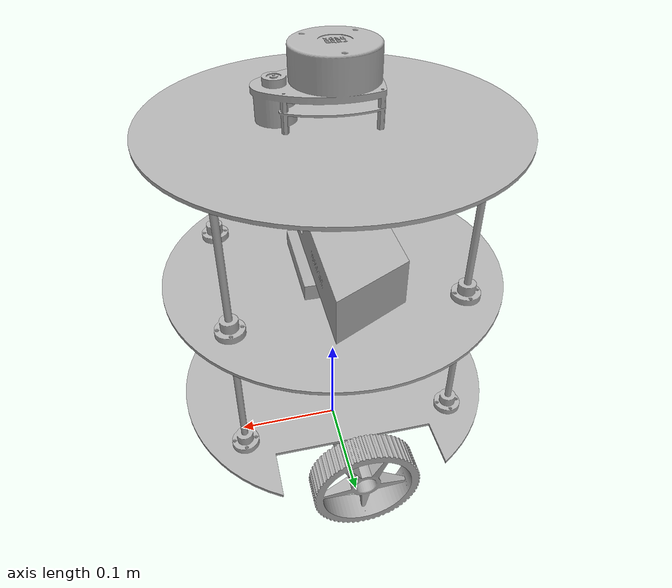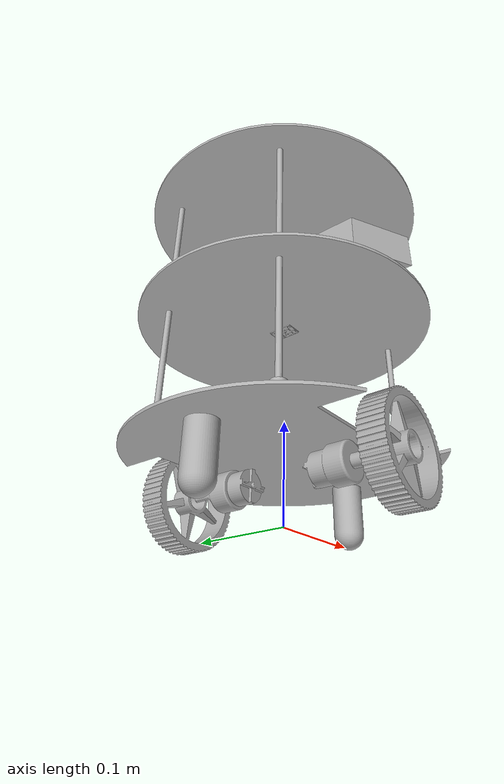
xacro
<?xml version="1.0" ?>
<robot name="greybot" xmlns:xacro="http://www.ros.org/wiki/xacro">

<xacro:include filename="$(find greybot_description)/urdf/materials.xacro" />
<xacro:include filename="$(find greybot_description)/urdf/greybot.trans" />
<xacro:include filename="$(find greybot_description)/urdf/greybot.gazebo" />
<link name="base_link">
  <inertial>
    <origin rpy="0 0 0" xyz="-2.7177496842797606e-17 -2.6467805879211377e-36 0.064"/>
    <mass value="1.3135009177288446"/>
    <inertia ixx="0.004258" ixy="0.0" ixz="-0.0" iyy="0.009288" iyz="0.0" izz="0.013544"/>
  </inertial>
  <visual>
    <origin rpy="0 0 0" xyz="0 0 0"/>
    <geometry>
      <mesh filename="package://greybot_description/meshes/base_link.stl" scale="0.001 0.001 0.001"/>
    </geometry>
    <material name="silver"/>
  </visual>
  <collision>
    <origin rpy="0 0 0" xyz="0 0 0"/>
    <geometry>
      <mesh filename="package://greybot_description/meshes/base_link.stl" scale="0.001 0.001 0.001"/>
    </geometry>
  </collision>
</link>

<link name="coupling_b1_1">
  <inertial>
    <origin rpy="0 0 0" xyz="0.1 -0.07000000000004185 0.07094199242025702"/>
    <mass value="0.011060936379359195"/>
    <inertia ixx="1e-06" ixy="0.0" ixz="0.0" iyy="1e-06" iyz="0.0" izz="1e-06"/>
  </inertial>
  <visual>
    <origin rpy="0 0 0" xyz="-0.0 -0.0 0.0"/>
    <geometry>
      <mesh filename="package://greybot_description/meshes/coupling_b1_1.stl" scale="0.001 0.001 0.001"/>
    </geometry>
    <material name="silver"/>
  </visual>
  <collision>
    <origin rpy="0 0 0" xyz="-0.0 -0.0 0.0"/>
    <geometry>
      <mesh filename="package://greybot_description/meshes/coupling_b1_1.stl" scale="0.001 0.001 0.001"/>
    </geometry>
  </collision>
</link>

<link name="coupling_b2_1">
  <inertial>
    <origin rpy="0 0 0" xyz="0.1 0.06999999999995812 0.07094199242025702"/>
    <mass value="0.011060936379359195"/>
    <inertia ixx="1e-06" ixy="0.0" ixz="0.0" iyy="1e-06" iyz="0.0" izz="1e-06"/>
  </inertial>
  <visual>
    <origin rpy="0 0 0" xyz="-0.0 -0.0 0.0"/>
    <geometry>
      <mesh filename="package://greybot_description/meshes/coupling_b2_1.stl" scale="0.001 0.001 0.001"/>
    </geometry>
    <material name="silver"/>
  </visual>
  <collision>
    <origin rpy="0 0 0" xyz="-0.0 -0.0 0.0"/>
    <geometry>
      <mesh filename="package://greybot_description/meshes/coupling_b2_1.stl" scale="0.001 0.001 0.001"/>
    </geometry>
  </collision>
</link>

<link name="coupling_b3_1">
  <inertial>
    <origin rpy="0 0 0" xyz="-0.10000000000000002 -0.07000000000004182 0.07094199242025703"/>
    <mass value="0.011060936379359195"/>
    <inertia ixx="1e-06" ixy="0.0" ixz="0.0" iyy="1e-06" iyz="0.0" izz="1e-06"/>
  </inertial>
  <visual>
    <origin rpy="0 0 0" xyz="-0.0 -0.0 -0.0"/>
    <geometry>
      <mesh filename="package://greybot_description/meshes/coupling_b3_1.stl" scale="0.001 0.001 0.001"/>
    </geometry>
    <material name="silver"/>
  </visual>
  <collision>
    <origin rpy="0 0 0" xyz="-0.0 -0.0 -0.0"/>
    <geometry>
      <mesh filename="package://greybot_description/meshes/coupling_b3_1.stl" scale="0.001 0.001 0.001"/>
    </geometry>
  </collision>
</link>

<link name="coupling_b4_1">
  <inertial>
    <origin rpy="0 0 0" xyz="-0.10000000000000002 0.06999999999995815 0.07094199242025702"/>
    <mass value="0.011060936379359195"/>
    <inertia ixx="1e-06" ixy="0.0" ixz="0.0" iyy="1e-06" iyz="0.0" izz="1e-06"/>
  </inertial>
  <visual>
    <origin rpy="0 0 0" xyz="-0.0 -0.0 -0.0"/>
    <geometry>
      <mesh filename="package://greybot_description/meshes/coupling_b4_1.stl" scale="0.001 0.001 0.001"/>
    </geometry>
    <material name="silver"/>
  </visual>
  <collision>
    <origin rpy="0 0 0" xyz="-0.0 -0.0 -0.0"/>
    <geometry>
      <mesh filename="package://greybot_description/meshes/coupling_b4_1.stl" scale="0.001 0.001 0.001"/>
    </geometry>
  </collision>
</link>

<link name="standoff_b1_1">
  <inertial>
    <origin rpy="0 0 0" xyz="-9.71445146547012e-17 5.551115123125783e-17 0.11219999999999997"/>
    <mass value="0.02774419012201502"/>
    <inertia ixx="3.6e-05" ixy="0.0" ixz="-0.0" iyy="3.6e-05" iyz="0.0" izz="0.0"/>
  </inertial>
  <visual>
    <origin rpy="0 0 0" xyz="-0.1 0.07 -0.0298"/>
    <geometry>
      <mesh filename="package://greybot_description/meshes/standoff_b1_1.stl" scale="0.001 0.001 0.001"/>
    </geometry>
    <material name="silver"/>
  </visual>
  <collision>
    <origin rpy="0 0 0" xyz="-0.1 0.07 -0.0298"/>
    <geometry>
      <mesh filename="package://greybot_description/meshes/standoff_b1_1.stl" scale="0.001 0.001 0.001"/>
    </geometry>
  </collision>
</link>

<link name="standoff_b2_1">
  <inertial>
    <origin rpy="0 0 0" xyz="-9.71445146547012e-17 -5.551115123125783e-17 0.11219999999999997"/>
    <mass value="0.02774419012201502"/>
    <inertia ixx="3.6e-05" ixy="-0.0" ixz="-0.0" iyy="3.6e-05" iyz="-0.0" izz="0.0"/>
  </inertial>
  <visual>
    <origin rpy="0 0 0" xyz="-0.1 -0.07 -0.0298"/>
    <geometry>
      <mesh filename="package://greybot_description/meshes/standoff_b2_1.stl" scale="0.001 0.001 0.001"/>
    </geometry>
    <material name="silver"/>
  </visual>
  <collision>
    <origin rpy="0 0 0" xyz="-0.1 -0.07 -0.0298"/>
    <geometry>
      <mesh filename="package://greybot_description/meshes/standoff_b2_1.stl" scale="0.001 0.001 0.001"/>
    </geometry>
  </collision>
</link>

<link name="standoff_b4_1">
  <inertial>
    <origin rpy="0 0 0" xyz="5.551115123125783e-17 -5.551115123125783e-17 0.11219999999999994"/>
    <mass value="0.02774419012201502"/>
    <inertia ixx="3.6e-05" ixy="0.0" ixz="0.0" iyy="3.6e-05" iyz="-0.0" izz="0.0"/>
  </inertial>
  <visual>
    <origin rpy="0 0 0" xyz="0.1 -0.07 -0.0298"/>
    <geometry>
      <mesh filename="package://greybot_description/meshes/standoff_b4_1.stl" scale="0.001 0.001 0.001"/>
    </geometry>
    <material name="silver"/>
  </visual>
  <collision>
    <origin rpy="0 0 0" xyz="0.1 -0.07 -0.0298"/>
    <geometry>
      <mesh filename="package://greybot_description/meshes/standoff_b4_1.stl" scale="0.001 0.001 0.001"/>
    </geometry>
  </collision>
</link>

<link name="standoff_b3_1">
  <inertial>
    <origin rpy="0 0 0" xyz="8.326672684688674e-17 4.163336342344337e-17 0.11219999999999994"/>
    <mass value="0.02774419012201502"/>
    <inertia ixx="3.6e-05" ixy="-0.0" ixz="0.0" iyy="3.6e-05" iyz="0.0" izz="0.0"/>
  </inertial>
  <visual>
    <origin rpy="0 0 0" xyz="0.1 0.07 -0.0298"/>
    <geometry>
      <mesh filename="package://greybot_description/meshes/standoff_b3_1.stl" scale="0.001 0.001 0.001"/>
    </geometry>
    <material name="silver"/>
  </visual>
  <collision>
    <origin rpy="0 0 0" xyz="0.1 0.07 -0.0298"/>
    <geometry>
      <mesh filename="package://greybot_description/meshes/standoff_b3_1.stl" scale="0.001 0.001 0.001"/>
    </geometry>
  </collision>
</link>

<link name="middle_link_1">
  <inertial>
    <origin rpy="0 0 0" xyz="-2.8933140311675675e-17 2.8812472243218297e-18 0.043000000000000066"/>
    <mass value="1.7183464031154387"/>
    <inertia ixx="0.009979" ixy="0.0" ixz="0.0" iyy="0.009979" iyz="-0.0" izz="0.019955"/>
  </inertial>
  <visual>
    <origin rpy="0 0 0" xyz="-0.0 0.0 -0.162"/>
    <geometry>
      <mesh filename="package://greybot_description/meshes/middle_link_1.stl" scale="0.001 0.001 0.001"/>
    </geometry>
    <material name="silver"/>
  </visual>
  <collision>
    <origin rpy="0 0 0" xyz="-0.0 0.0 -0.162"/>
    <geometry>
      <mesh filename="package://greybot_description/meshes/middle_link_1.stl" scale="0.001 0.001 0.001"/>
    </geometry>
  </collision>
</link>

<link name="coupling_t2_1">
  <inertial>
    <origin rpy="0 0 0" xyz="0.0999999999999999 0.07000000000004189 0.21194199242025732"/>
    <mass value="0.011060936379359195"/>
    <inertia ixx="1e-06" ixy="-0.0" ixz="0.0" iyy="1e-06" iyz="-0.0" izz="1e-06"/>
  </inertial>
  <visual>
    <origin rpy="0 0 0" xyz="-0.0 -0.0 -0.0"/>
    <geometry>
      <mesh filename="package://greybot_description/meshes/coupling_t2_1.stl" scale="0.001 0.001 0.001"/>
    </geometry>
    <material name="silver"/>
  </visual>
  <collision>
    <origin rpy="0 0 0" xyz="-0.0 -0.0 -0.0"/>
    <geometry>
      <mesh filename="package://greybot_description/meshes/coupling_t2_1.stl" scale="0.001 0.001 0.001"/>
    </geometry>
  </collision>
</link>

<link name="coupling_t1_1">
  <inertial>
    <origin rpy="0 0 0" xyz="0.09999999999999996 -0.06999999999995825 0.21194199242025696"/>
    <mass value="0.011060936379359195"/>
    <inertia ixx="1e-06" ixy="0.0" ixz="0.0" iyy="1e-06" iyz="-0.0" izz="1e-06"/>
  </inertial>
  <visual>
    <origin rpy="0 0 0" xyz="-0.0 -0.0 -0.0"/>
    <geometry>
      <mesh filename="package://greybot_description/meshes/coupling_t1_1.stl" scale="0.001 0.001 0.001"/>
    </geometry>
    <material name="silver"/>
  </visual>
  <collision>
    <origin rpy="0 0 0" xyz="-0.0 -0.0 -0.0"/>
    <geometry>
      <mesh filename="package://greybot_description/meshes/coupling_t1_1.stl" scale="0.001 0.001 0.001"/>
    </geometry>
  </collision>
</link>

<link name="coupling_t4_1">
  <inertial>
    <origin rpy="0 0 0" xyz="-0.10000000000000002 0.07000000000004189 0.21194199242025724"/>
    <mass value="0.011060936379359195"/>
    <inertia ixx="1e-06" ixy="0.0" ixz="-0.0" iyy="1e-06" iyz="-0.0" izz="1e-06"/>
  </inertial>
  <visual>
    <origin rpy="0 0 0" xyz="-0.0 -0.0 -0.0"/>
    <geometry>
      <mesh filename="package://greybot_description/meshes/coupling_t4_1.stl" scale="0.001 0.001 0.001"/>
    </geometry>
    <material name="silver"/>
  </visual>
  <collision>
    <origin rpy="0 0 0" xyz="-0.0 -0.0 -0.0"/>
    <geometry>
      <mesh filename="package://greybot_description/meshes/coupling_t4_1.stl" scale="0.001 0.001 0.001"/>
    </geometry>
  </collision>
</link>

<link name="coupling_t3_1">
  <inertial>
    <origin rpy="0 0 0" xyz="-0.10000000000000002 -0.06999999999995828 0.21194199242025732"/>
    <mass value="0.011060936379359195"/>
    <inertia ixx="1e-06" ixy="-0.0" ixz="0.0" iyy="1e-06" iyz="-0.0" izz="1e-06"/>
  </inertial>
  <visual>
    <origin rpy="0 0 0" xyz="-0.0 0.0 -0.0"/>
    <geometry>
      <mesh filename="package://greybot_description/meshes/coupling_t3_1.stl" scale="0.001 0.001 0.001"/>
    </geometry>
    <material name="silver"/>
  </visual>
  <collision>
    <origin rpy="0 0 0" xyz="-0.0 0.0 -0.0"/>
    <geometry>
      <mesh filename="package://greybot_description/meshes/coupling_t3_1.stl" scale="0.001 0.001 0.001"/>
    </geometry>
  </collision>
</link>

<link name="standoff_t2_1">
  <inertial>
    <origin rpy="0 0 0" xyz="-8.326672684688674e-17 0.14000000000000007 0.3128000000000003"/>
    <mass value="0.02774419012201502"/>
    <inertia ixx="3.6e-05" ixy="-0.0" ixz="-0.0" iyy="3.6e-05" iyz="-0.0" izz="0.0"/>
  </inertial>
  <visual>
    <origin rpy="0 0 0" xyz="-0.1 0.07 0.0298"/>
    <geometry>
      <mesh filename="package://greybot_description/meshes/standoff_t2_1.stl" scale="0.001 0.001 0.001"/>
    </geometry>
    <material name="silver"/>
  </visual>
  <collision>
    <origin rpy="0 0 0" xyz="-0.1 0.07 0.0298"/>
    <geometry>
      <mesh filename="package://greybot_description/meshes/standoff_t2_1.stl" scale="0.001 0.001 0.001"/>
    </geometry>
  </collision>
</link>

<link name="standoff_t1_1">
  <inertial>
    <origin rpy="0 0 0" xyz="-8.326672684688674e-17 -0.14000000000000007 0.3128000000000003"/>
    <mass value="0.02774419012201502"/>
    <inertia ixx="3.6e-05" ixy="0.0" ixz="-0.0" iyy="3.6e-05" iyz="0.0" izz="0.0"/>
  </inertial>
  <visual>
    <origin rpy="0 0 0" xyz="-0.1 -0.07 0.0298"/>
    <geometry>
      <mesh filename="package://greybot_description/meshes/standoff_t1_1.stl" scale="0.001 0.001 0.001"/>
    </geometry>
    <material name="silver"/>
  </visual>
  <collision>
    <origin rpy="0 0 0" xyz="-0.1 -0.07 0.0298"/>
    <geometry>
      <mesh filename="package://greybot_description/meshes/standoff_t1_1.stl" scale="0.001 0.001 0.001"/>
    </geometry>
  </collision>
</link>

<link name="standoff_t3_1">
  <inertial>
    <origin rpy="0 0 0" xyz="8.326672684688674e-17 -0.14000000000000007 0.3128000000000003"/>
    <mass value="0.02774419012201502"/>
    <inertia ixx="3.6e-05" ixy="-0.0" ixz="0.0" iyy="3.6e-05" iyz="0.0" izz="0.0"/>
  </inertial>
  <visual>
    <origin rpy="0 0 0" xyz="0.1 -0.07 0.0298"/>
    <geometry>
      <mesh filename="package://greybot_description/meshes/standoff_t3_1.stl" scale="0.001 0.001 0.001"/>
    </geometry>
    <material name="silver"/>
  </visual>
  <collision>
    <origin rpy="0 0 0" xyz="0.1 -0.07 0.0298"/>
    <geometry>
      <mesh filename="package://greybot_description/meshes/standoff_t3_1.stl" scale="0.001 0.001 0.001"/>
    </geometry>
  </collision>
</link>

<link name="standoff_t4_1">
  <inertial>
    <origin rpy="0 0 0" xyz="5.551115123125783e-17 0.14000000000000007 0.3128000000000003"/>
    <mass value="0.02774419012201502"/>
    <inertia ixx="3.6e-05" ixy="0.0" ixz="0.0" iyy="3.6e-05" iyz="-0.0" izz="0.0"/>
  </inertial>
  <visual>
    <origin rpy="0 0 0" xyz="0.1 0.07 0.0298"/>
    <geometry>
      <mesh filename="package://greybot_description/meshes/standoff_t4_1.stl" scale="0.001 0.001 0.001"/>
    </geometry>
    <material name="silver"/>
  </visual>
  <collision>
    <origin rpy="0 0 0" xyz="0.1 0.07 0.0298"/>
    <geometry>
      <mesh filename="package://greybot_description/meshes/standoff_t4_1.stl" scale="0.001 0.001 0.001"/>
    </geometry>
  </collision>
</link>

<link name="top_link_1">
  <inertial>
    <origin rpy="0 0 0" xyz="2.0774429986797753e-17 2.0774429986797753e-17 0.06400000000000061"/>
    <mass value="1.7183464031154387"/>
    <inertia ixx="0.009979" ixy="0.0" ixz="-0.0" iyy="0.009979" iyz="-0.0" izz="0.019955"/>
  </inertial>
  <visual>
    <origin rpy="0 0 0" xyz="-0.0 -0.0 -0.283"/>
    <geometry>
      <mesh filename="package://greybot_description/meshes/top_link_1.stl" scale="0.001 0.001 0.001"/>
    </geometry>
    <material name="silver"/>
  </visual>
  <collision>
    <origin rpy="0 0 0" xyz="-0.0 -0.0 -0.283"/>
    <geometry>
      <mesh filename="package://greybot_description/meshes/top_link_1.stl" scale="0.001 0.001 0.001"/>
    </geometry>
  </collision>
</link>

<link name="imu_1">
  <inertial>
    <origin rpy="0 0 0" xyz="0.00027253344099404503 -0.0026451860323988808 0.20247934840875956"/>
    <mass value="0.003859300658293327"/>
    <inertia ixx="0.0" ixy="-0.0" ixz="0.0" iyy="0.0" iyz="-0.0" izz="0.0"/>
  </inertial>
  <visual>
    <origin rpy="0 0 0" xyz="-2.4e-05 -0.002 -0.000364"/>
    <geometry>
      <mesh filename="package://greybot_description/meshes/imu_1.stl" scale="0.001 0.001 0.001"/>
    </geometry>
    <material name="silver"/>
  </visual>
  <collision>
    <origin rpy="0 0 0" xyz="-2.4e-05 -0.002 -0.000364"/>
    <geometry>
      <mesh filename="package://greybot_description/meshes/imu_1.stl" scale="0.001 0.001 0.001"/>
    </geometry>
  </collision>
</link>

<link name="kinect_1">
  <inertial>
    <origin rpy="0 0 0" xyz="-0.1387314861670969 -0.030456282068582342 0.29581897608954666"/>
    <mass value="5.55950342662314"/>
    <inertia ixx="0.026508" ixy="-4e-06" ixz="-4.8e-05" iyy="0.004257" iyz="-1e-06" izz="0.025733"/>
  </inertial>
  <visual>
    <origin rpy="0 0 0" xyz="-0.1397 -0.03048 0.040132"/>
    <geometry>
      <mesh filename="package://greybot_description/meshes/kinect_1.stl" scale="0.001 0.001 0.001"/>
    </geometry>
    <material name="silver"/>
  </visual>
  <collision>
    <origin rpy="0 0 0" xyz="-0.1397 -0.03048 0.040132"/>
    <geometry>
      <mesh filename="package://greybot_description/meshes/kinect_1.stl" scale="0.001 0.001 0.001"/>
    </geometry>
  </collision>
</link>

<link name="laser_1">
  <inertial>
    <origin rpy="0 0 0" xyz="0.04676661841959851 0.019908073664241046 0.3836491842472231"/>
    <mass value="1.3392964352221826"/>
    <inertia ixx="0.000619" ixy="-1e-06" ixz="0.000159" iyy="0.000967" iyz="-3e-06" izz="0.001105"/>
  </inertial>
  <visual>
    <origin rpy="0 0 0" xyz="0.042 0.02 -0.000119"/>
    <geometry>
      <mesh filename="package://greybot_description/meshes/laser_1.stl" scale="0.001 0.001 0.001"/>
    </geometry>
    <material name="silver"/>
  </visual>
  <collision>
    <origin rpy="0 0 0" xyz="0.042 0.02 -0.000119"/>
    <geometry>
      <mesh filename="package://greybot_description/meshes/laser_1.stl" scale="0.001 0.001 0.001"/>
    </geometry>
  </collision>
</link>

<link name="motor_left_1">
  <inertial>
    <origin rpy="0 0 0" xyz="-0.013999999999912202 -0.05903060074973735 0.04874999999999999"/>
    <mass value="0.3135290339727778"/>
    <inertia ixx="7.4e-05" ixy="0.0" ixz="-0.0" iyy="4.7e-05" iyz="0.0" izz="7.4e-05"/>
  </inertial>
  <visual>
    <origin rpy="0 0 0" xyz="-0.012 0.00025 0.005"/>
    <geometry>
      <mesh filename="package://greybot_description/meshes/motor_left_1.stl" scale="0.001 0.001 0.001"/>
    </geometry>
    <material name="silver"/>
  </visual>
  <collision>
    <origin rpy="0 0 0" xyz="-0.012 0.00025 0.005"/>
    <geometry>
      <mesh filename="package://greybot_description/meshes/motor_left_1.stl" scale="0.001 0.001 0.001"/>
    </geometry>
  </collision>
</link>

<link name="motor_right_1">
  <inertial>
    <origin rpy="0 0 0" xyz="-0.013999999999912215 0.05903060074973731 0.04874999999999985"/>
    <mass value="0.3135290339727778"/>
    <inertia ixx="7.4e-05" ixy="-0.0" ixz="0.0" iyy="4.7e-05" iyz="0.0" izz="7.4e-05"/>
  </inertial>
  <visual>
    <origin rpy="0 0 0" xyz="-0.012 -0.00025 0.005"/>
    <geometry>
      <mesh filename="package://greybot_description/meshes/motor_right_1.stl" scale="0.001 0.001 0.001"/>
    </geometry>
    <material name="silver"/>
  </visual>
  <collision>
    <origin rpy="0 0 0" xyz="-0.012 -0.00025 0.005"/>
    <geometry>
      <mesh filename="package://greybot_description/meshes/motor_right_1.stl" scale="0.001 0.001 0.001"/>
    </geometry>
  </collision>
</link>

<link name="wheel_left_1">
  <inertial>
    <origin rpy="0 0 0" xyz="-0.013999999999999974 -0.12044316139562275 0.043750000000000094"/>
    <mass value="0.17760437141666585"/>
    <inertia ixx="0.000165" ixy="-0.0" ixz="-0.0" iyy="0.000313" iyz="0.0" izz="0.000165"/>
  </inertial>
  <visual>
    <origin rpy="0 0 0" xyz="-0.012 -0.0 -0.0"/>
    <geometry>
      <mesh filename="package://greybot_description/meshes/wheel_left_1.stl" scale="0.001 0.001 0.001"/>
    </geometry>
    <material name="silver"/>
  </visual>
  <collision>
    <origin rpy="0 0 0" xyz="-0.012 -0.0 -0.0"/>
    <geometry>
      <mesh filename="package://greybot_description/meshes/wheel_left_1.stl" scale="0.001 0.001 0.001"/>
    </geometry>
  </collision>
</link>

<link name="wheel_right_1">
  <inertial>
    <origin rpy="0 0 0" xyz="-0.01400000000000005 0.11995683860437735 0.04374999999999979"/>
    <mass value="0.17760437141666585"/>
    <inertia ixx="0.000165" ixy="0.0" ixz="-0.0" iyy="0.000313" iyz="-0.0" izz="0.000165"/>
  </inertial>
  <visual>
    <origin rpy="0 0 0" xyz="-0.012 -0.0 -0.0"/>
    <geometry>
      <mesh filename="package://greybot_description/meshes/wheel_right_1.stl" scale="0.001 0.001 0.001"/>
    </geometry>
    <material name="silver"/>
  </visual>
  <collision>
    <origin rpy="0 0 0" xyz="-0.012 -0.0 -0.0"/>
    <geometry>
      <mesh filename="package://greybot_description/meshes/wheel_right_1.stl" scale="0.001 0.001 0.001"/>
    </geometry>
  </collision>
</link>

<link name="castor_front_1">
  <inertial>
    <origin rpy="0 0 0" xyz="0.11000000000000001 1.7481953804716273e-18 -0.028858695652173888"/>
    <mass value="0.31905818640317085"/>
    <inertia ixx="0.000107" ixy="0.0" ixz="-0.0" iyy="0.000107" iyz="0.0" izz="3.5e-05"/>
  </inertial>
  <visual>
    <origin rpy="0 0 0" xyz="-0.0 0.0 -0.0625"/>
    <geometry>
      <mesh filename="package://greybot_description/meshes/castor_front_1.stl" scale="0.001 0.001 0.001"/>
    </geometry>
    <material name="silver"/>
  </visual>
  <collision>
    <origin rpy="0 0 0" xyz="-0.0 0.0 -0.0625"/>
    <geometry>
      <mesh filename="package://greybot_description/meshes/castor_front_1.stl" scale="0.001 0.001 0.001"/>
    </geometry>
  </collision>
</link>

<link name="castor_back_1">
  <inertial>
    <origin rpy="0 0 0" xyz="-0.10999999999999999 1.7481953804716273e-18 -0.028858695652173888"/>
    <mass value="0.31905818640317085"/>
    <inertia ixx="0.000107" ixy="-0.0" ixz="-0.0" iyy="0.000107" iyz="0.0" izz="3.5e-05"/>
  </inertial>
  <visual>
    <origin rpy="0 0 0" xyz="-0.0 -0.0 -0.0625"/>
    <geometry>
      <mesh filename="package://greybot_description/meshes/castor_back_1.stl" scale="0.001 0.001 0.001"/>
    </geometry>
    <material name="silver"/>
  </visual>
  <collision>
    <origin rpy="0 0 0" xyz="-0.0 -0.0 -0.0625"/>
    <geometry>
      <mesh filename="package://greybot_description/meshes/castor_back_1.stl" scale="0.001 0.001 0.001"/>
    </geometry>
  </collision>
</link>

<joint name="coupling_joint_b1" type="fixed">
  <origin rpy="0 0 0" xyz="0.0 0.0 0.0"/>
  <parent link="base_link"/>
  <child link="coupling_b1_1"/>
</joint>

<joint name="coupling_joint_b2" type="fixed">
  <origin rpy="0 0 0" xyz="0.0 0.0 0.0"/>
  <parent link="base_link"/>
  <child link="coupling_b2_1"/>
</joint>

<joint name="coupling_joint_b3" type="fixed">
  <origin rpy="0 0 0" xyz="0.0 0.0 0.0"/>
  <parent link="base_link"/>
  <child link="coupling_b3_1"/>
</joint>

<joint name="coupling_joint_b4" type="fixed">
  <origin rpy="0 0 0" xyz="0.0 0.0 0.0"/>
  <parent link="base_link"/>
  <child link="coupling_b4_1"/>
</joint>

<joint name="standoff_joint_b1" type="fixed">
  <origin rpy="0 0 0" xyz="0.1 -0.07 0.0298"/>
  <parent link="base_link"/>
  <child link="standoff_b1_1"/>
</joint>

<joint name="standoff_joint_b2" type="fixed">
  <origin rpy="0 0 0" xyz="0.1 0.07 0.0298"/>
  <parent link="base_link"/>
  <child link="standoff_b2_1"/>
</joint>

<joint name="standoff_joint_b4" type="fixed">
  <origin rpy="0 0 0" xyz="-0.1 0.07 0.0298"/>
  <parent link="base_link"/>
  <child link="standoff_b4_1"/>
</joint>

<joint name="standoff_joint_b3" type="fixed">
  <origin rpy="0 0 0" xyz="-0.1 -0.07 0.0298"/>
  <parent link="base_link"/>
  <child link="standoff_b3_1"/>
</joint>

<joint name="middle_link_joint" type="fixed">
  <origin rpy="0 0 0" xyz="0.0 0.0 0.162"/>
  <parent link="base_link"/>
  <child link="middle_link_1"/>
</joint>

<joint name="coupling_joint_t2" type="fixed">
  <origin rpy="0 0 0" xyz="0.0 0.0 0.0"/>
  <parent link="base_link"/>
  <child link="coupling_t2_1"/>
</joint>

<joint name="coupling_joint_t1" type="fixed">
  <origin rpy="0 0 0" xyz="0.0 0.0 0.0"/>
  <parent link="base_link"/>
  <child link="coupling_t1_1"/>
</joint>

<joint name="coupling_joint_t4" type="fixed">
  <origin rpy="0 0 0" xyz="0.0 0.0 0.0"/>
  <parent link="base_link"/>
  <child link="coupling_t4_1"/>
</joint>

<joint name="coupling_joint_t3" type="fixed">
  <origin rpy="0 0 0" xyz="0.0 0.0 0.0"/>
  <parent link="base_link"/>
  <child link="coupling_t3_1"/>
</joint>

<joint name="standoff_joint_t2" type="fixed">
  <origin rpy="0 0 0" xyz="0.1 -0.07 -0.0298"/>
  <parent link="base_link"/>
  <child link="standoff_t2_1"/>
</joint>

<joint name="standoff_joint_t1" type="fixed">
  <origin rpy="0 0 0" xyz="0.1 0.07 -0.0298"/>
  <parent link="base_link"/>
  <child link="standoff_t1_1"/>
</joint>

<joint name="standoff_joint_t3" type="fixed">
  <origin rpy="0 0 0" xyz="-0.1 0.07 -0.0298"/>
  <parent link="base_link"/>
  <child link="standoff_t3_1"/>
</joint>

<joint name="standoff_joint_t4" type="fixed">
  <origin rpy="0 0 0" xyz="-0.1 -0.07 -0.0298"/>
  <parent link="base_link"/>
  <child link="standoff_t4_1"/>
</joint>

<joint name="top_link_joint" type="fixed">
  <origin rpy="0 0 0" xyz="0.0 0.0 0.283"/>
  <parent link="base_link"/>
  <child link="top_link_1"/>
</joint>

<joint name="imu_joint" type="fixed">
  <origin rpy="0 0 0" xyz="2.4e-05 0.002 0.000364"/>
  <parent link="base_link"/>
  <child link="imu_1"/>
</joint>

<joint name="kinect_joint" type="fixed">
  <origin rpy="0 0 0" xyz="0.1397 0.03048 -0.040132"/>
  <parent link="base_link"/>
  <child link="kinect_1"/>
</joint>

<joint name="laser_joint" type="fixed">
  <origin rpy="0 0 0" xyz="-0.042 -0.02 0.000119"/>
  <parent link="base_link"/>
  <child link="laser_1"/>
</joint>

<joint name="motor_left_joint" type="fixed">
  <origin rpy="0 0 0" xyz="0.012 -0.00025 -0.005"/>
  <parent link="base_link"/>
  <child link="motor_left_1"/>
</joint>

<joint name="motor_right_joint" type="fixed">
  <origin rpy="0 0 0" xyz="0.012 0.00025 -0.005"/>
  <parent link="base_link"/>
  <child link="motor_right_1"/>
</joint>

<joint name="wheel_left_joint" type="continuous">
  <origin rpy="0 0 0" xyz="0.0 0.00025 0.005"/>
  <parent link="motor_left_1"/>
  <child link="wheel_left_1"/>
  <axis xyz="0.0 1.0 0.0"/>
</joint>

<joint name="wheel_right_joint" type="continuous">
  <origin rpy="0 0 0" xyz="0.0 -0.00025 0.005"/>
  <parent link="motor_right_1"/>
  <child link="wheel_right_1"/>
  <axis xyz="0.0 1.0 -0.0"/>
</joint>

<joint name="castor_front_joint" type="fixed">
  <origin rpy="0 0 0" xyz="0.0 0.0 0.0625"/>
  <parent link="base_link"/>
  <child link="castor_front_1"/>
</joint>

<joint name="castor_back_joint" type="fixed">
  <origin rpy="0 0 0" xyz="0.0 0.0 0.0625"/>
  <parent link="base_link"/>
  <child link="castor_back_1"/>
</joint>

</robot>

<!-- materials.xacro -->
<robot name="greybot" xmlns:xacro="http://www.ros.org/wiki/xacro" >

<material name="silver">
  <color rgba="0.700 0.700 0.700 1.000"/>
</material>

</robot>

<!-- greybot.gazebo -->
<robot name="greybot" xmlns:xacro="http://www.ros.org/wiki/xacro" >

<xacro:property name="body_color" value="Gazebo/Silver" />

<gazebo>
  <plugin filename="libgazebo_ros_control.so" name="control"/>
</gazebo>
<gazebo reference="base_link">
  <material>${body_color}</material>
  <mu1>0.2</mu1>
  <mu2>0.2</mu2>
  <selfCollide>true</selfCollide>
  <gravity>true</gravity>
</gazebo>

<gazebo reference="coupling_b1_1">
  <material>${body_color}</material>
  <mu1>0.2</mu1>
  <mu2>0.2</mu2>
  <selfCollide>true</selfCollide>
</gazebo>

<gazebo reference="coupling_b2_1">
  <material>${body_color}</material>
  <mu1>0.2</mu1>
  <mu2>0.2</mu2>
  <selfCollide>true</selfCollide>
</gazebo>

<gazebo reference="coupling_b3_1">
  <material>${body_color}</material>
  <mu1>0.2</mu1>
  <mu2>0.2</mu2>
  <selfCollide>true</selfCollide>
</gazebo>

<gazebo reference="coupling_b4_1">
  <material>${body_color}</material>
  <mu1>0.2</mu1>
  <mu2>0.2</mu2>
  <selfCollide>true</selfCollide>
</gazebo>

<gazebo reference="standoff_b1_1">
  <material>${body_color}</material>
  <mu1>0.2</mu1>
  <mu2>0.2</mu2>
  <selfCollide>true</selfCollide>
</gazebo>

<gazebo reference="standoff_b2_1">
  <material>${body_color}</material>
  <mu1>0.2</mu1>
  <mu2>0.2</mu2>
  <selfCollide>true</selfCollide>
</gazebo>

<gazebo reference="standoff_b4_1">
  <material>${body_color}</material>
  <mu1>0.2</mu1>
  <mu2>0.2</mu2>
  <selfCollide>true</selfCollide>
</gazebo>

<gazebo reference="standoff_b3_1">
  <material>${body_color}</material>
  <mu1>0.2</mu1>
  <mu2>0.2</mu2>
  <selfCollide>true</selfCollide>
</gazebo>

<gazebo reference="middle_link_1">
  <material>${body_color}</material>
  <mu1>0.2</mu1>
  <mu2>0.2</mu2>
  <selfCollide>true</selfCollide>
</gazebo>

<gazebo reference="coupling_t2_1">
  <material>${body_color}</material>
  <mu1>0.2</mu1>
  <mu2>0.2</mu2>
  <selfCollide>true</selfCollide>
</gazebo>

<gazebo reference="coupling_t1_1">
  <material>${body_color}</material>
  <mu1>0.2</mu1>
  <mu2>0.2</mu2>
  <selfCollide>true</selfCollide>
</gazebo>

<gazebo reference="coupling_t4_1">
  <material>${body_color}</material>
  <mu1>0.2</mu1>
  <mu2>0.2</mu2>
  <selfCollide>true</selfCollide>
</gazebo>

<gazebo reference="coupling_t3_1">
  <material>${body_color}</material>
  <mu1>0.2</mu1>
  <mu2>0.2</mu2>
  <selfCollide>true</selfCollide>
</gazebo>

<gazebo reference="standoff_t2_1">
  <material>${body_color}</material>
  <mu1>0.2</mu1>
  <mu2>0.2</mu2>
  <selfCollide>true</selfCollide>
</gazebo>

<gazebo reference="standoff_t1_1">
  <material>${body_color}</material>
  <mu1>0.2</mu1>
  <mu2>0.2</mu2>
  <selfCollide>true</selfCollide>
</gazebo>

<gazebo reference="standoff_t3_1">
  <material>${body_color}</material>
  <mu1>0.2</mu1>
  <mu2>0.2</mu2>
  <selfCollide>true</selfCollide>
</gazebo>

<gazebo reference="standoff_t4_1">
  <material>${body_color}</material>
  <mu1>0.2</mu1>
  <mu2>0.2</mu2>
  <selfCollide>true</selfCollide>
</gazebo>

<gazebo reference="top_link_1">
  <material>${body_color}</material>
  <mu1>0.2</mu1>
  <mu2>0.2</mu2>
  <selfCollide>true</selfCollide>
</gazebo>

<gazebo reference="imu_1">
  <material>${body_color}</material>
  <mu1>0.2</mu1>
  <mu2>0.2</mu2>
  <selfCollide>true</selfCollide>
</gazebo>

<gazebo reference="kinect_1">
  <material>${body_color}</material>
  <mu1>0.2</mu1>
  <mu2>0.2</mu2>
  <selfCollide>true</selfCollide>
</gazebo>

<gazebo reference="laser_1">
  <material>${body_color}</material>
  <mu1>0.2</mu1>
  <mu2>0.2</mu2>
  <selfCollide>true</selfCollide>
</gazebo>

<gazebo reference="motor_left_1">
  <material>${body_color}</material>
  <mu1>0.2</mu1>
  <mu2>0.2</mu2>
  <selfCollide>true</selfCollide>
</gazebo>

<gazebo reference="motor_right_1">
  <material>${body_color}</material>
  <mu1>0.2</mu1>
  <mu2>0.2</mu2>
  <selfCollide>true</selfCollide>
</gazebo>

<gazebo reference="wheel_left_1">
  <material>${body_color}</material>
  <mu1>0.2</mu1>
  <mu2>0.2</mu2>
  <selfCollide>true</selfCollide>
</gazebo>

<gazebo reference="wheel_right_1">
  <material>${body_color}</material>
  <mu1>0.2</mu1>
  <mu2>0.2</mu2>
  <selfCollide>true</selfCollide>
</gazebo>

<gazebo reference="castor_front_1">
  <material>${body_color}</material>
  <mu1>0.2</mu1>
  <mu2>0.2</mu2>
  <selfCollide>true</selfCollide>
</gazebo>

<gazebo reference="castor_back_1">
  <material>${body_color}</material>
  <mu1>0.2</mu1>
  <mu2>0.2</mu2>
  <selfCollide>true</selfCollide>
</gazebo>

</robot>
